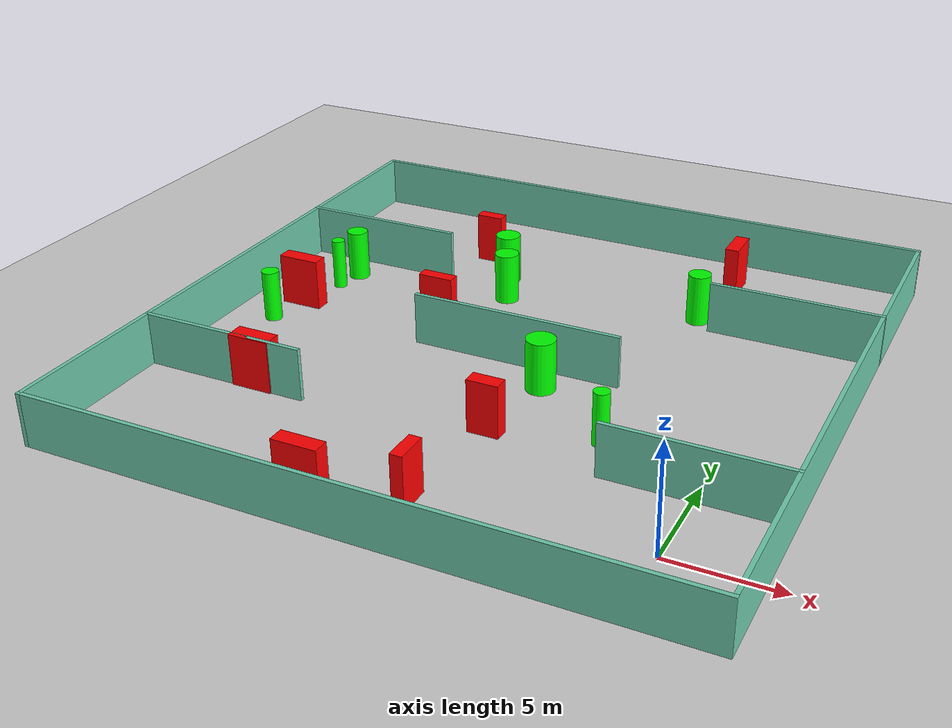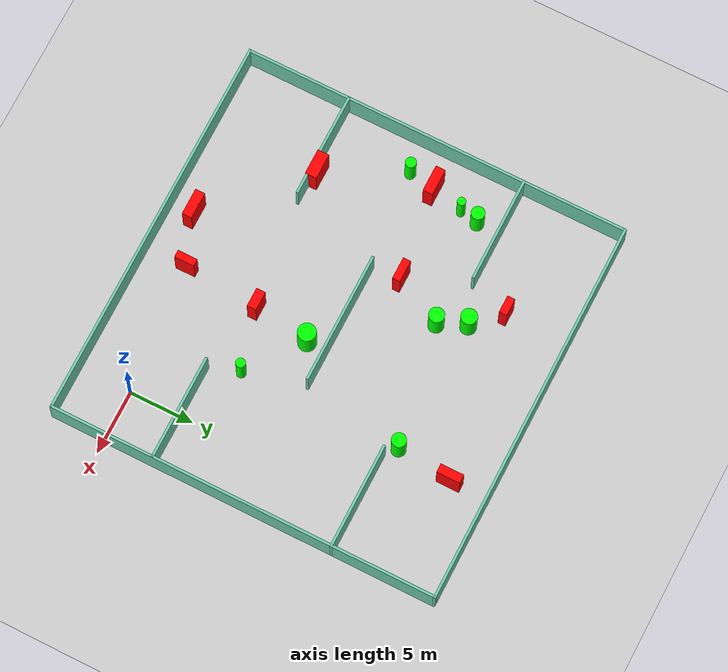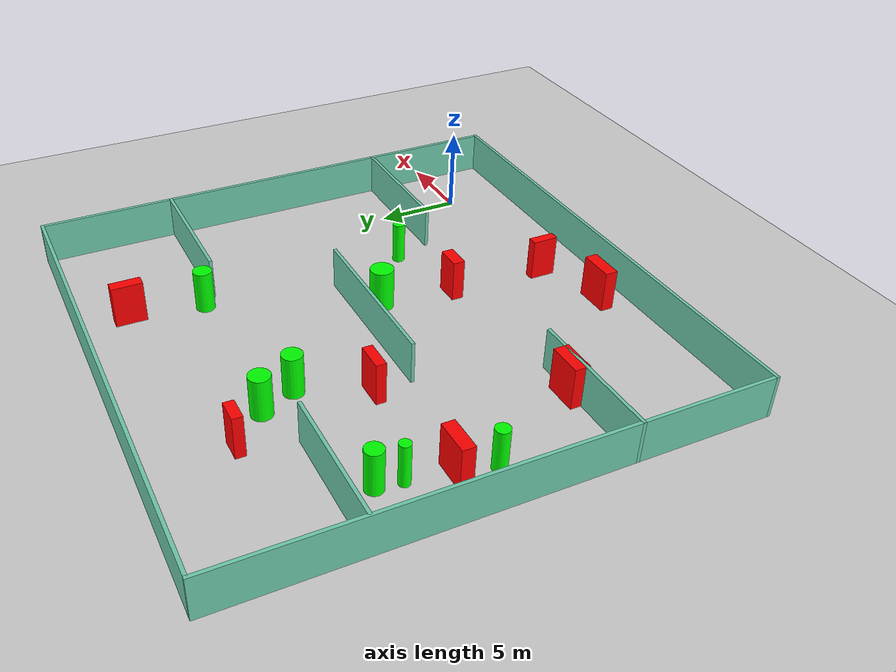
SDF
<sdf version="1.7">
 <world name="default">
  <light name="sun" type="directional">
   <pose>0 0 10 0 -0 0</pose>
   <diffuse>0.8 0.8 0.8 1</diffuse>
   <specular>0.2 0.2 0.2 1</specular>
   <attenuation>
    <range>1000</range>
    <constant>0.9</constant>
    <linear>0.01</linear>
    <quadratic>0.001</quadratic>
   </attenuation>
   <direction>-0.5 0.1 -0.9</direction>
   <spot><inner_angle>0</inner_angle><outer_angle>0</outer_angle><falloff>0</falloff></spot>
  </light>
  <model name="ground_plane">
   <static>1</static>
   <link name="link">
    <collision name="collision">
     <geometry><plane><normal>0 0 1</normal><size>100 100</size></plane></geometry>
     <surface>
      <contact><collide_bitmask>65535</collide_bitmask></contact>
      <friction><ode><mu>100</mu><mu2>50</mu2></ode></friction>
     </surface>
    </collision>
    <visual name="visual">
     <cast_shadows>0</cast_shadows>
     <geometry><plane><normal>0 0 1</normal><size>100 100</size></plane></geometry>
     <material>
      <script><uri>file://media/materials/scripts/gazebo.material</uri><name>Gazebo/Grey</name></script>
     </material>
    </visual>
   </link>
  </model>
  <gravity>0 0 -9.8</gravity>
  <magnetic_field>6e-06 2.3e-05 -4.2e-05</magnetic_field>
  <atmosphere type="adiabatic"/>
  <physics type="ode">
   <max_step_size>0.001</max_step_size>
   <real_time_factor>1</real_time_factor>
   <real_time_update_rate>1000</real_time_update_rate>
  </physics>
  <scene><ambient>0.4 0.4 0.4 1</ambient><background>0.7 0.7 0.7 1</background><shadows>1</shadows></scene>
  <spherical_coordinates>
   <surface_model>EARTH_WGS84</surface_model>
   <latitude_deg>0</latitude_deg>
   <longitude_deg>0</longitude_deg>
   <elevation>0</elevation>
   <heading_deg>0</heading_deg>
  </spherical_coordinates>
  <model name="my_base_walls">
   <link name="Wall_10">
    <collision name="Wall_10_Collision">
     <geometry><box><size>8.2 0.2 2.5</size></box></geometry>
     <pose>0 0 1.25 0 -0 0</pose>
    </collision>
    <visual name="Wall_10_Visual">
     <pose>0 0 1.25 0 -0 0</pose>
     <geometry><box><size>8.2 0.2 2.5</size></box></geometry>
     <material>
      <script><uri>file://media/materials/scripts/gazebo.material</uri><name>Gazebo/Grey</name></script>
      <ambient>0.435294 0.796078 0.67451 1</ambient>
     </material>
     <meta><layer>0</layer></meta>
    </visual>
    <pose>-11 -7 0 0 -0 0</pose>
   </link>
   <link name="Wall_12">
    <collision name="Wall_12_Collision">
     <geometry><box><size>8.2 0.2 2.5</size></box></geometry>
     <pose>0 0 1.25 0 -0 0</pose>
    </collision>
    <visual name="Wall_12_Visual">
     <pose>0 0 1.25 0 -0 0</pose>
     <geometry><box><size>8.2 0.2 2.5</size></box></geometry>
     <material>
      <script><uri>file://media/materials/scripts/gazebo.material</uri><name>Gazebo/Grey</name></script>
      <ambient>0.435294 0.796078 0.67451 1</ambient>
     </material>
     <meta><layer>0</layer></meta>
    </visual>
    <pose>-11 7 0 0 -0 0</pose>
   </link>
   <link name="Wall_14">
    <collision name="Wall_14_Collision">
     <geometry><box><size>8.2 0.2 2.5</size></box></geometry>
     <pose>0 0 1.25 0 -0 0</pose>
    </collision>
    <visual name="Wall_14_Visual">
     <pose>0 0 1.25 0 -0 0</pose>
     <geometry><box><size>8.2 0.2 2.5</size></box></geometry>
     <material>
      <script><uri>file://media/materials/scripts/gazebo.material</uri><name>Gazebo/Grey</name></script>
      <ambient>0.435294 0.796078 0.67451 1</ambient>
     </material>
     <meta><layer>0</layer></meta>
    </visual>
    <pose>11 7 0 0 -0 3.14159</pose>
   </link>
   <link name="Wall_16">
    <collision name="Wall_16_Collision">
     <geometry><box><size>10.2 0.2 2.5</size></box></geometry>
     <pose>0 0 1.25 0 -0 0</pose>
    </collision>
    <visual name="Wall_16_Visual">
     <pose>0 0 1.25 0 -0 0</pose>
     <geometry><box><size>10.2 0.2 2.5</size></box></geometry>
     <material>
      <script><uri>file://media/materials/scripts/gazebo.material</uri><name>Gazebo/Grey</name></script>
      <ambient>0.435294 0.796078 0.67451 1</ambient>
     </material>
     <meta><layer>0</layer></meta>
    </visual>
    <pose>0 0 0 0 -0 3.14159</pose>
   </link>
   <link name="Wall_2">
    <collision name="Wall_2_Collision">
     <geometry><box><size>30.2 0.2 2.5</size></box></geometry>
     <pose>0 0 1.25 0 -0 0</pose>
    </collision>
    <visual name="Wall_2_Visual">
     <pose>0 0 1.25 0 -0 0</pose>
     <geometry><box><size>30.2 0.2 2.5</size></box></geometry>
     <material>
      <script><uri>file://media/materials/scripts/gazebo.material</uri><name>Gazebo/Grey</name></script>
      <ambient>0.435294 0.796078 0.67451 1</ambient>
     </material>
     <meta><layer>0</layer></meta>
    </visual>
    <pose>0 -15 0 0 -0 3.14159</pose>
   </link>
   <link name="Wall_3">
    <collision name="Wall_3_Collision">
     <geometry><box><size>30.2 0.2 2.5</size></box></geometry>
     <pose>0 0 1.25 0 -0 0</pose>
    </collision>
    <visual name="Wall_3_Visual">
     <pose>0 0 1.25 0 -0 0</pose>
     <geometry><box><size>30.2 0.2 2.5</size></box></geometry>
     <material>
      <script><uri>file://media/materials/scripts/gazebo.material</uri><name>Gazebo/Grey</name></script>
      <ambient>0.435294 0.796078 0.67451 1</ambient>
     </material>
     <meta><layer>0</layer></meta>
    </visual>
    <pose>-15 0 0 0 -0 1.5708</pose>
   </link>
   <link name="Wall_4">
    <collision name="Wall_4_Collision">
     <geometry><box><size>30.2 0.2 2.5</size></box></geometry>
     <pose>0 0 1.25 0 -0 0</pose>
    </collision>
    <visual name="Wall_4_Visual">
     <pose>0 0 1.25 0 -0 0</pose>
     <geometry><box><size>30.2 0.2 2.5</size></box></geometry>
     <material>
      <script><uri>file://media/materials/scripts/gazebo.material</uri><name>Gazebo/Grey</name></script>
      <ambient>0.435294 0.796078 0.67451 1</ambient>
     </material>
     <meta><layer>0</layer></meta>
    </visual>
    <pose>0 15 0 0 -0 0</pose>
   </link>
   <link name="Wall_6">
    <collision name="Wall_6_Collision">
     <geometry><box><size>30.2 0.2 2.5</size></box></geometry>
     <pose>0 0 1.25 0 -0 0</pose>
    </collision>
    <visual name="Wall_6_Visual">
     <pose>0 0 1.25 0 -0 0</pose>
     <geometry><box><size>30.2 0.2 2.5</size></box></geometry>
     <material>
      <script><uri>file://media/materials/scripts/gazebo.material</uri><name>Gazebo/Grey</name></script>
      <ambient>0.435294 0.796078 0.67451 1</ambient>
     </material>
     <meta><layer>0</layer></meta>
    </visual>
    <pose>15 0 0 0 -0 1.5708</pose>
   </link>
   <link name="Wall_8">
    <collision name="Wall_8_Collision">
     <geometry><box><size>8.2 0.2 2.5</size></box></geometry>
     <pose>0 0 1.25 0 -0 0</pose>
    </collision>
    <visual name="Wall_8_Visual">
     <pose>0 0 1.25 0 -0 0</pose>
     <geometry><box><size>8.2 0.2 2.5</size></box></geometry>
     <material>
      <script><uri>file://media/materials/scripts/gazebo.material</uri><name>Gazebo/Grey</name></script>
      <ambient>0.435294 0.796078 0.67451 1</ambient>
     </material>
     <meta><layer>0</layer></meta>
    </visual>
    <pose>11 -7 0 0 -0 3.14159</pose>
   </link>
   <static>1</static>
   <pose>-11 11 0 0 -0 0</pose>
  </model>
  <model name="cylinder1">
   <static>1</static>
   <link name="link">
    <inertial>
     <mass>1</mass>
     <inertia><ixx>0.5</ixx><ixy>0</ixy><ixz>0</ixz><iyy>0.5</iyy><iyz>0</iyz><izz>1</izz></inertia>
    </inertial>
    <collision name="collision">
     <geometry><cylinder><radius>0.32160786624823134</radius><length>2.5</length></cylinder></geometry>
    </collision>
    <visual name="visual">
     <geometry><cylinder><radius>0.32160786624823134</radius><length>2.5</length></cylinder></geometry>
     <material>
      <ambient>0 1 0 1</ambient>
      <diffuse>0 1 0 1</diffuse>
      <specular>0.1 0.1 0.1 1</specular>
      <emissive>0 0 0 0</emissive>
     </material>
    </visual>
   </link>
   <pose>-22.655760389616606 14.71943367492796 1.25 0 0 0</pose>
  </model>
  <model name="cylinder2">
   <static>1</static>
   <link name="link">
    <inertial>
     <mass>1</mass>
     <inertia><ixx>0.5</ixx><ixy>0</ixy><ixz>0</ixz><iyy>0.5</iyy><iyz>0</iyz><izz>1</izz></inertia>
    </inertial>
    <collision name="collision">
     <geometry><cylinder><radius>0.41508171163536955</radius><length>2.5</length></cylinder></geometry>
    </collision>
    <visual name="visual">
     <geometry><cylinder><radius>0.41508171163536955</radius><length>2.5</length></cylinder></geometry>
     <material>
      <ambient>0 1 0 1</ambient>
      <diffuse>0 1 0 1</diffuse>
      <specular>0.1 0.1 0.1 1</specular>
      <emissive>0 0 0 0</emissive>
     </material>
    </visual>
   </link>
   <pose>-23.63942803505575 10.175384508793195 1.25 0 0 0</pose>
  </model>
  <model name="cylinder3">
   <static>1</static>
   <link name="link">
    <inertial>
     <mass>1</mass>
     <inertia><ixx>0.5</ixx><ixy>0</ixy><ixz>0</ixz><iyy>0.5</iyy><iyz>0</iyz><izz>1</izz></inertia>
    </inertial>
    <collision name="collision">
     <geometry><cylinder><radius>0.5515421852099399</radius><length>2.5</length></cylinder></geometry>
    </collision>
    <visual name="visual">
     <geometry><cylinder><radius>0.5515421852099399</radius><length>2.5</length></cylinder></geometry>
     <material>
      <ambient>0 1 0 1</ambient>
      <diffuse>0 1 0 1</diffuse>
      <specular>0.1 0.1 0.1 1</specular>
      <emissive>0 0 0 0</emissive>
     </material>
    </visual>
   </link>
   <pose>-4.882828189839332 18.73744033750625 1.25 0 0 0</pose>
  </model>
  <model name="cylinder4">
   <static>1</static>
   <link name="link">
    <inertial>
     <mass>1</mass>
     <inertia><ixx>0.5</ixx><ixy>0</ixy><ixz>0</ixz><iyy>0.5</iyy><iyz>0</iyz><izz>1</izz></inertia>
    </inertial>
    <collision name="collision">
     <geometry><cylinder><radius>0.6146228518332104</radius><length>2.5</length></cylinder></geometry>
    </collision>
    <visual name="visual">
     <geometry><cylinder><radius>0.6146228518332104</radius><length>2.5</length></cylinder></geometry>
     <material>
      <ambient>0 1 0 1</ambient>
      <diffuse>0 1 0 1</diffuse>
      <specular>0.1 0.1 0.1 1</specular>
      <emissive>0 0 0 0</emissive>
     </material>
    </visual>
   </link>
   <pose>-15.209238419619082 19.045002232039504 1.25 0 0 0</pose>
  </model>
  <model name="cylinder5">
   <static>1</static>
   <link name="link">
    <inertial>
     <mass>1</mass>
     <inertia><ixx>0.5</ixx><ixy>0</ixy><ixz>0</ixz><iyy>0.5</iyy><iyz>0</iyz><izz>1</izz></inertia>
    </inertial>
    <collision name="collision">
     <geometry><cylinder><radius>0.588430217940104</radius><length>2.5</length></cylinder></geometry>
    </collision>
    <visual name="visual">
     <geometry><cylinder><radius>0.588430217940104</radius><length>2.5</length></cylinder></geometry>
     <material>
      <ambient>0 1 0 1</ambient>
      <diffuse>0 1 0 1</diffuse>
      <specular>0.1 0.1 0.1 1</specular>
      <emissive>0 0 0 0</emissive>
     </material>
    </visual>
   </link>
   <pose>-14.27430034852968 16.95531141146106 1.25 0 0 0</pose>
  </model>
  <model name="cylinder6">
   <static>1</static>
   <link name="link">
    <inertial>
     <mass>1</mass>
     <inertia><ixx>0.5</ixx><ixy>0</ixy><ixz>0</ixz><iyy>0.5</iyy><iyz>0</iyz><izz>1</izz></inertia>
    </inertial>
    <collision name="collision">
     <geometry><cylinder><radius>0.6925180081156715</radius><length>2.5</length></cylinder></geometry>
    </collision>
    <visual name="visual">
     <geometry><cylinder><radius>0.6925180081156715</radius><length>2.5</length></cylinder></geometry>
     <material>
      <ambient>0 1 0 1</ambient>
      <diffuse>0 1 0 1</diffuse>
      <specular>0.1 0.1 0.1 1</specular>
      <emissive>0 0 0 0</emissive>
     </material>
    </visual>
   </link>
   <pose>-8.967221844410673 9.405476229154502 1.25 0 0 0</pose>
  </model>
  <model name="cylinder7">
   <static>1</static>
   <link name="link">
    <inertial>
     <mass>1</mass>
     <inertia><ixx>0.5</ixx><ixy>0</ixy><ixz>0</ixz><iyy>0.5</iyy><iyz>0</iyz><izz>1</izz></inertia>
    </inertial>
    <collision name="collision">
     <geometry><cylinder><radius>0.36690429347902764</radius><length>2.5</length></cylinder></geometry>
    </collision>
    <visual name="visual">
     <geometry><cylinder><radius>0.36690429347902764</radius><length>2.5</length></cylinder></geometry>
     <material>
      <ambient>0 1 0 1</ambient>
      <diffuse>0 1 0 1</diffuse>
      <specular>0.1 0.1 0.1 1</specular>
      <emissive>0 0 0 0</emissive>
     </material>
    </visual>
   </link>
   <pose>-4.836110930766701 6.303860048235077 1.25 0 0 0</pose>
  </model>
  <model name="cylinder8">
   <static>1</static>
   <link name="link">
    <inertial>
     <mass>1</mass>
     <inertia><ixx>0.5</ixx><ixy>0</ixy><ixz>0</ixz><iyy>0.5</iyy><iyz>0</iyz><izz>1</izz></inertia>
    </inertial>
    <collision name="collision">
     <geometry><cylinder><radius>0.5161377695545156</radius><length>2.5</length></cylinder></geometry>
    </collision>
    <visual name="visual">
     <geometry><cylinder><radius>0.5161377695545156</radius><length>2.5</length></cylinder></geometry>
     <material>
      <ambient>0 1 0 1</ambient>
      <diffuse>0 1 0 1</diffuse>
      <specular>0.1 0.1 0.1 1</specular>
      <emissive>0 0 0 0</emissive>
     </material>
    </visual>
   </link>
   <pose>-22.398215915647263 16.155610412595273 1.25 0 0 0</pose>
  </model>
  <model name="box1">
   <static>1</static>
   <link name="link">
    <inertial>
     <mass>1</mass>
     <inertia><ixx>0.083</ixx><ixy>0</ixy><ixz>0</ixz><iyy>0.083</iyy><iyz>0</iyz><izz>0.083</izz></inertia>
    </inertial>
    <collision name="collision">
     <geometry><box><size>1.349364694194752 0.5946728273015014 2.5</size></box></geometry>
    </collision>
    <visual name="visual">
     <geometry><box><size>1.349364694194752 0.5946728273015014 2.5</size></box></geometry>
     <material>
      <ambient>1 0 0 1</ambient>
      <diffuse>1 0 0 1</diffuse>
      <specular>0.1 0.1 0.1 1</specular>
      <emissive>0 0 0 0</emissive>
     </material>
    </visual>
    <sensor name="my_contact" type="contact">
     <contact><collision>box_collision</collision><topic>__default_topic__</topic></contact>
    </sensor>
   </link>
   <pose>-17.138378590399267 21.06379149965775 1.25 0 0 0</pose>
  </model>
  <model name="box2">
   <static>1</static>
   <link name="link">
    <inertial>
     <mass>1</mass>
     <inertia><ixx>0.083</ixx><ixy>0</ixy><ixz>0</ixz><iyy>0.083</iyy><iyz>0</iyz><izz>0.083</izz></inertia>
    </inertial>
    <collision name="collision">
     <geometry><box><size>0.5609627290294732 1.5432089578743857 2.5</size></box></geometry>
    </collision>
    <visual name="visual">
     <geometry><box><size>0.5609627290294732 1.5432089578743857 2.5</size></box></geometry>
     <material>
      <ambient>1 0 0 1</ambient>
      <diffuse>1 0 0 1</diffuse>
      <specular>0.1 0.1 0.1 1</specular>
      <emissive>0 0 0 0</emissive>
     </material>
    </visual>
    <sensor name="my_contact" type="contact">
     <contact><collision>box_collision</collision><topic>__default_topic__</topic></contact>
    </sensor>
   </link>
   <pose>-9.94467249699052 -0.7358087140405507 1.25 0 0 0</pose>
  </model>
  <model name="box3">
   <static>1</static>
   <link name="link">
    <inertial>
     <mass>1</mass>
     <inertia><ixx>0.083</ixx><ixy>0</ixy><ixz>0</ixz><iyy>0.083</iyy><iyz>0</iyz><izz>0.083</izz></inertia>
    </inertial>
    <collision name="collision">
     <geometry><box><size>1.480298571568266 0.7021874425812057 2.5</size></box></geometry>
    </collision>
    <visual name="visual">
     <geometry><box><size>1.480298571568266 0.7021874425812057 2.5</size></box></geometry>
     <material>
      <ambient>1 0 0 1</ambient>
      <diffuse>1 0 0 1</diffuse>
      <specular>0.1 0.1 0.1 1</specular>
      <emissive>0 0 0 0</emissive>
     </material>
    </visual>
    <sensor name="my_contact" type="contact">
     <contact><collision>box_collision</collision><topic>__default_topic__</topic></contact>
    </sensor>
   </link>
   <pose>-9.50895972262509 5.103407750586923 1.25 0 0 0</pose>
  </model>
  <model name="box4">
   <static>1</static>
   <link name="link">
    <inertial>
     <mass>1</mass>
     <inertia><ixx>0.083</ixx><ixy>0</ixy><ixz>0</ixz><iyy>0.083</iyy><iyz>0</iyz><izz>0.083</izz></inertia>
    </inertial>
    <collision name="collision">
     <geometry><box><size>1.990483560471775 0.896444120277057 2.5</size></box></geometry>
    </collision>
    <visual name="visual">
     <geometry><box><size>1.990483560471775 0.896444120277057 2.5</size></box></geometry>
     <material>
      <ambient>1 0 0 1</ambient>
      <diffuse>1 0 0 1</diffuse>
      <specular>0.1 0.1 0.1 1</specular>
      <emissive>0 0 0 0</emissive>
     </material>
    </visual>
    <sensor name="my_contact" type="contact">
     <contact><collision>box_collision</collision><topic>__default_topic__</topic></contact>
    </sensor>
   </link>
   <pose>-20.473565020245132 4.285409129909071 1.25 0 0 0</pose>
  </model>
  <model name="box5">
   <static>1</static>
   <link name="link">
    <inertial>
     <mass>1</mass>
     <inertia><ixx>0.083</ixx><ixy>0</ixy><ixz>0</ixz><iyy>0.083</iyy><iyz>0</iyz><izz>0.083</izz></inertia>
    </inertial>
    <collision name="collision">
     <geometry><box><size>2.0648055124682383 0.7501867121920898 2.5</size></box></geometry>
    </collision>
    <visual name="visual">
     <geometry><box><size>2.0648055124682383 0.7501867121920898 2.5</size></box></geometry>
     <material>
      <ambient>1 0 0 1</ambient>
      <diffuse>1 0 0 1</diffuse>
      <specular>0.1 0.1 0.1 1</specular>
      <emissive>0 0 0 0</emissive>
     </material>
    </visual>
    <sensor name="my_contact" type="contact">
     <contact><collision>box_collision</collision><topic>__default_topic__</topic></contact>
    </sensor>
   </link>
   <pose>-13.815386374552334 -2.16710622965306 1.25 0 0 0</pose>
  </model>
  <model name="box6">
   <static>1</static>
   <link name="link">
    <inertial>
     <mass>1</mass>
     <inertia><ixx>0.083</ixx><ixy>0</ixy><ixz>0</ixz><iyy>0.083</iyy><iyz>0</iyz><izz>0.083</izz></inertia>
    </inertial>
    <collision name="collision">
     <geometry><box><size>2.0661334769694077 0.7547228416592509 2.5</size></box></geometry>
    </collision>
    <visual name="visual">
     <geometry><box><size>2.0661334769694077 0.7547228416592509 2.5</size></box></geometry>
     <material>
      <ambient>1 0 0 1</ambient>
      <diffuse>1 0 0 1</diffuse>
      <specular>0.1 0.1 0.1 1</specular>
      <emissive>0 0 0 0</emissive>
     </material>
    </visual>
    <sensor name="my_contact" type="contact">
     <contact><collision>box_collision</collision><topic>__default_topic__</topic></contact>
    </sensor>
   </link>
   <pose>-23.190307840251723 12.266143866514934 1.25 0 0 0</pose>
  </model>
  <model name="box7">
   <static>1</static>
   <link name="link">
    <inertial>
     <mass>1</mass>
     <inertia><ixx>0.083</ixx><ixy>0</ixy><ixz>0</ixz><iyy>0.083</iyy><iyz>0</iyz><izz>0.083</izz></inertia>
    </inertial>
    <collision name="collision">
     <geometry><box><size>1.7115390051944104 0.5918192907043383 2.5</size></box></geometry>
    </collision>
    <visual name="visual">
     <geometry><box><size>1.7115390051944104 0.5918192907043383 2.5</size></box></geometry>
     <material>
      <ambient>1 0 0 1</ambient>
      <diffuse>1 0 0 1</diffuse>
      <specular>0.1 0.1 0.1 1</specular>
      <emissive>0 0 0 0</emissive>
     </material>
    </visual>
    <sensor name="my_contact" type="contact">
     <contact><collision>box_collision</collision><topic>__default_topic__</topic></contact>
    </sensor>
   </link>
   <pose>-16.13955972260348 13.234390716435968 1.25 0 0 0</pose>
  </model>
  <model name="box8">
   <static>1</static>
   <link name="link">
    <inertial>
     <mass>1</mass>
     <inertia><ixx>0.083</ixx><ixy>0</ixy><ixz>0</ixz><iyy>0.083</iyy><iyz>0</iyz><izz>0.083</izz></inertia>
    </inertial>
    <collision name="collision">
     <geometry><box><size>0.6735209146438054 1.8069975210866323 2.5</size></box></geometry>
    </collision>
    <visual name="visual">
     <geometry><box><size>0.6735209146438054 1.8069975210866323 2.5</size></box></geometry>
     <material>
      <ambient>1 0 0 1</ambient>
      <diffuse>1 0 0 1</diffuse>
      <specular>0.1 0.1 0.1 1</specular>
      <emissive>0 0 0 0</emissive>
     </material>
    </visual>
    <sensor name="my_contact" type="contact">
     <contact><collision>box_collision</collision><topic>__default_topic__</topic></contact>
    </sensor>
   </link>
   <pose>-4.3553499654581564 23.00126456044338 1.25 0 0 0</pose>
  </model>
 </world>
</sdf>
